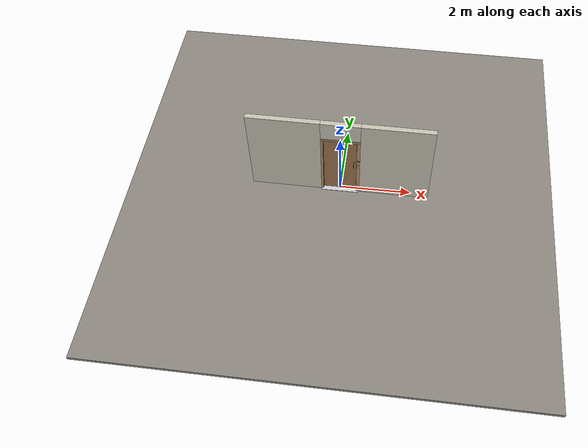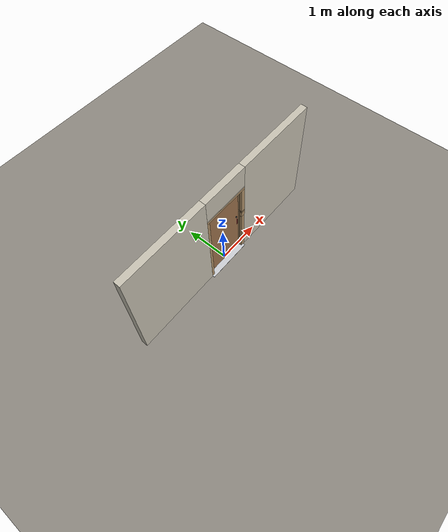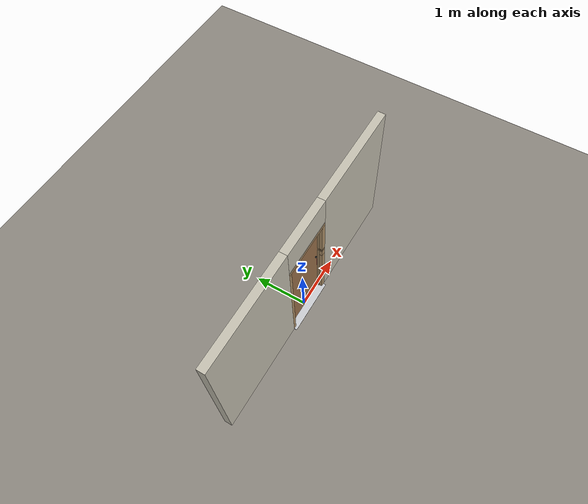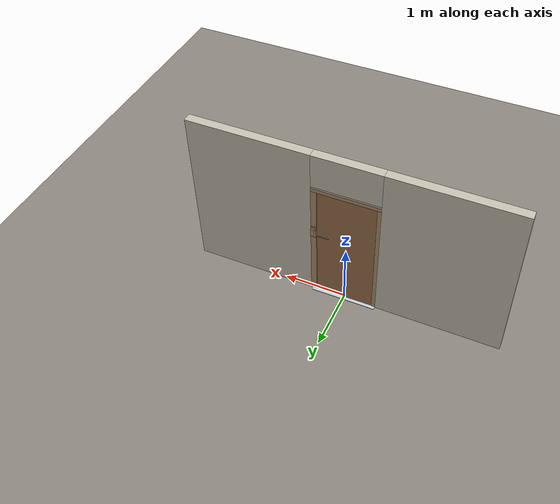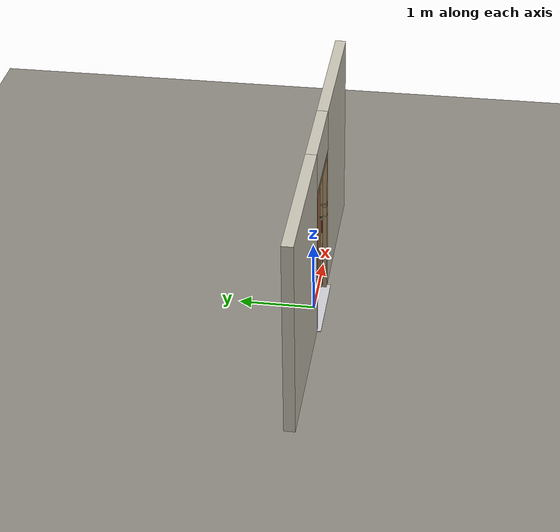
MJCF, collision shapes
<?xml version="1.0" ?>
<mujoco model="db0349_swing_single_minimal">
  <compiler angle="radian" meshdir="../../hardware" texturedir="../../textures" autolimits="true" inertiafromgeom="false"/>
  <option timestep="0.002" integrator="implicitfast" cone="elliptic" impratio="10" noslip_iterations="3">
    <flag multiccd="enable"/>
  </option>
  <size memory="16M"/>
  <default>
    <geom condim="4" solref="0.005 1" solimp="0.95 0.99 0.001"/>
    <joint solreflimit="0.005 1" solimplimit="0.95 0.99 0.001"/>
    <tendon solreflimit="0.005 1"/>
    <equality solref="0.002 1"/>
  </default>
  <visual>
    <headlight ambient="0.4 0.4 0.4" diffuse="0.7 0.7 0.7" specular="0.2 0.2 0.2"/>
    <quality shadowsize="4096"/>
    <map znear="0.01" zfar="60"/>
  </visual>
  <asset>
    <mesh name="thumb_latch_0073ea78ed" file="thumb_latch_0073ea78ed.obj"/>
    <material name="mat_floor" rgba="0.55 0.53 0.5 1" specular="0.2" shininess="0.15" reflectance="0"/>
    <material name="mat_wall" rgba="0.78 0.76 0.7 1" specular="0.2" shininess="0.1" reflectance="0"/>
    <material name="mat_leaf" rgba="0.62 0.45 0.3 1" specular="0.2" shininess="0.5" reflectance="0"/>
    <material name="mat_leaf_brace" rgba="0.558 0.405 0.27 1" specular="0.2" shininess="0.2" reflectance="0"/>
    <material name="mat_hinge" rgba="0.45 0.3 0.22 1" specular="0.5" shininess="0.1" reflectance="0.2"/>
    <material name="mat_op_wrought_iron" rgba="0.08 0.08 0.09 1" specular="0.56" shininess="0.25" reflectance="0.24"/>
    <material name="mat_op_brass" rgba="0.85 0.66 0.3 1" specular="0.8" shininess="0.75" reflectance="0.4"/>
    <material name="mat_frame" rgba="0.7 0.58 0.42 1" specular="0.2" shininess="0.5" reflectance="0"/>
    <material name="mat_threshold" rgba="0.8 0.81 0.83 1" specular="0.8" shininess="0.6" reflectance="0.4"/>
    <material name="mat_bumper_stop" rgba="0.08 0.08 0.08 1" specular="0.2" shininess="0.1" reflectance="0"/>
    <material name="mat_stop_base" rgba="0.9 0.9 0.92 1" specular="0.8" shininess="0.9" reflectance="0.4"/>
    <texture name="skybox" type="skybox" builtin="gradient" rgb1="0.6 0.7 0.85" rgb2="0.9 0.92 0.95" width="256" height="256"/>
  </asset>
  <worldbody>
    <light name="sun" pos="1.5 -2.5 4" dir="-0.3 0.5 -0.8" directional="true" diffuse="0.8 0.8 0.8" specular="0.3 0.3 0.3" castshadow="true"/>
    <light name="fill" pos="-1.5 2.5 3" dir="0.3 -0.5 -0.7" directional="true" diffuse="0.35 0.35 0.4" castshadow="false"/>
    <camera name="robot_view" pos="0 -2.582688 1.734312" xyaxes="1 0 0 0 0.26963 0.962964" fovy="52"/>
    <camera name="far_view" pos="0 2.501687 1.734312" xyaxes="-1 0 0 0 -0.26963 0.962964" fovy="52"/>
    <camera name="iso" pos="1.932062 -2.175938 2.141063" xyaxes="0.741536 0.670913 0 -0.242917 0.268487 0.932151" fovy="46"/>
    <camera name="detail_handle" pos="0.556 -0.86 1.33" xyaxes="0.97561 0.219512 0 -0.070934 0.315262 0.94635" fovy="38"/>
    <geom name="floor" type="box" size="6 6 0.05" pos="0 0 -0.05" material="mat_floor" group="0" contype="1" conaffinity="1" friction="0.8 0.005 0.0001" density="2400"/>
    <geom name="wall_left" type="box" size="0.9895 0.0725 1.35" pos="-1.5105 -0.0405 1.35" material="mat_wall" group="0" contype="1" conaffinity="1" friction="0.6 0.005 0.0001" density="800"/>
    <geom name="wall_right" type="box" size="0.9745 0.0725 1.35" pos="1.5255 -0.0405 1.35" material="mat_wall" group="0" contype="1" conaffinity="1" friction="0.6 0.005 0.0001" density="800"/>
    <geom name="wall_header" type="box" size="0.536 0.0725 0.2825" pos="0.015 -0.0405 2.4175" material="mat_wall" group="0" contype="1" conaffinity="1" friction="0.6 0.005 0.0001" density="800"/>
    <geom name="jamb_hinge" type="box" size="0.03 0.0725 1.0225" pos="-0.491 -0.0405 1.0225" material="mat_frame" group="0" contype="1" conaffinity="1" friction="0.6 0.005 0.0001" density="750"/>
    <geom name="strike_1235_wall_n" type="box" size="0.045 0.07 0.07" pos="0.506 -0.043 1.235" material="mat_frame" group="0" contype="1" conaffinity="1" friction="0.6 0.005 0.0001" density="750"/>
    <geom name="strike_1235_wall_p" type="box" size="0.015 0.003 0.07" pos="0.476 0.05 1.235" material="mat_frame" group="0" contype="1" conaffinity="1" friction="0.6 0.005 0.0001" density="750"/>
    <geom name="strike_1235_back" type="box" size="0.035 0.01 0.07" pos="0.516 0.037 1.235" material="mat_frame" group="0" contype="1" conaffinity="1" friction="0.6 0.005 0.0001" density="750"/>
    <geom name="strike_1350_wall_n" type="box" size="0.045 0.034 0.01" pos="0.506 -0.079 1.35" material="mat_frame" group="0" contype="1" conaffinity="1" friction="0.6 0.005 0.0001" density="750"/>
    <geom name="strike_1350_wall_p" type="box" size="0.045 0.0305 0.01" pos="0.506 0.0015 1.35" material="mat_frame" group="0" contype="1" conaffinity="1" friction="0.6 0.005 0.0001" density="750"/>
    <geom name="strike_1350_back" type="box" size="0.024 0.008 0.01" pos="0.527 -0.037 1.35" material="mat_frame" group="0" contype="1" conaffinity="1" friction="0.6 0.005 0.0001" density="750"/>
    <geom name="jamb_strike_0" type="box" size="0.045 0.0725 0.5825" pos="0.506 -0.0405 0.5825" material="mat_frame" group="0" contype="1" conaffinity="1" friction="0.6 0.005 0.0001" density="750"/>
    <geom name="jamb_strike_1" type="box" size="0.045 0.0725 0.0175" pos="0.506 -0.0405 1.3225" material="mat_frame" group="0" contype="1" conaffinity="1" friction="0.6 0.005 0.0001" density="750"/>
    <geom name="jamb_strike_2" type="box" size="0.045 0.0725 0.3425" pos="0.506 -0.0405 1.7025" material="mat_frame" group="0" contype="1" conaffinity="1" friction="0.6 0.005 0.0001" density="750"/>
    <geom name="jamb_head" type="box" size="0.536 0.0725 0.03" pos="0.015 -0.0405 2.075" material="mat_frame" group="0" contype="1" conaffinity="1" friction="0.6 0.005 0.0001" density="750"/>
    <geom name="head_stud" type="box" size="0.536 0.0725 0.015" pos="0.015 -0.0405 2.12" material="mat_wall" group="0" contype="1" conaffinity="1" friction="0.6 0.005 0.0001" density="500"/>
    <geom name="stop_hinge" type="box" size="0.0055 0.016 1.0225" pos="-0.4555 -0.0415 1.0225" material="mat_frame" group="0" contype="1" conaffinity="1" friction="0.6 0.005 0.0001" density="750"/>
    <geom name="stop_strike" type="box" size="0.0055 0.016 0.664" pos="0.4555 -0.0415 0.664" material="mat_frame" group="0" contype="1" conaffinity="1" friction="0.6 0.005 0.0001" density="750"/>
    <geom name="stop_strike_1" type="box" size="0.0055 0.016 0.3365" pos="0.4555 -0.0415 1.7085" material="mat_frame" group="0" contype="1" conaffinity="1" friction="0.6 0.005 0.0001" density="750"/>
    <geom name="stop_head" type="box" size="0.461 0.016 0.0055" pos="0 -0.0415 2.0395" material="mat_frame" group="0" contype="1" conaffinity="1" friction="0.6 0.005 0.0001" density="750"/>
    <geom name="threshold" type="box" size="0.521 0.1225 0.004" pos="0 -0.0405 0.004" material="mat_threshold" group="0" contype="1" conaffinity="1" friction="0.6 0.005 0.0001" density="2700"/>
    <site name="approach_point" pos="0 -1.5 0" quat="1 0 0 0" size="0.05" rgba="0.2 0.9 0.2 0.5" group="4"/>
    <site name="goal_point" pos="0 1.5 0" quat="1 0 0 0" size="0.05" rgba="0.2 0.9 0.2 0.5" group="4"/>
    <site name="door_plane_center" pos="0 0 1.0225" quat="1 0 0 0" size="0.02" rgba="0.2 0.9 0.2 0.5" group="4"/>
    <body name="leaf" pos="-0.461 0 0">
      <inertial pos="0.464577 -0.000545 1.025304" mass="66.040744" quat="0.500816 0.499392 -0.500626 0.499163" diaginertia="4.66969546 22.467431057 27.106459245"/>
      <joint name="leaf_hinge" type="hinge" axis="0 0 1" pos="0.003 0.032 0" limited="true" range="0 1.570796" damping="0.30611" frictionloss="12.216597" armature="0.02"/>
      <geom name="leaf_slab" type="box" size="0.457 0.025 1.016" pos="0.46 0 1.025" material="mat_leaf" group="0" contype="1" conaffinity="1" friction="0.4 0.005 0.0001" density="1"/>
      <geom name="leaf_suffolk_grip" type="mesh" mesh="thumb_latch_0073ea78ed" pos="0.837 -0.025 1.05" quat="0.707107 0.707107 0 0" material="mat_op_wrought_iron" group="1" contype="0" conaffinity="0" density="7000"/>
      <geom name="leaf_suffolk_grip_col" type="capsule" size="0.008 0.09" pos="0.837 -0.06 1.05" material="mat_op_wrought_iron" group="3" contype="1" conaffinity="1" rgba="0.8 0.3 0.3 0.25" friction="0.7 0.01 0.0001" density="7000"/>
      <site name="leaf_grip_n" pos="0.837 -0.06 1.05" quat="1 0 0 0" size="0.012" rgba="0.2 0.9 0.2 0.5" group="4"/>
      <site name="leaf_edge_mid" pos="0.917 0 1.016" quat="1 0 0 0" size="0.02" rgba="0.2 0.9 0.2 0.5" group="4"/>
      <body name="leaf_thumb" pos="0.837 -0.025 1.195">
        <inertial pos="0 -0.02 0" mass="0.03528" quat="1 0 0 0" diaginertia="0.000002411 0.000002752 0.000004951"/>
        <joint name="leaf_thumb_hinge" type="hinge" axis="1 0 0" limited="true" range="0 0.3" damping="0.15542" frictionloss="0.032" stiffness="0.6" springref="-0.5" armature="0.01"/>
        <geom name="leaf_thumb_geom" type="box" size="0.015 0.014 0.003" pos="0 -0.02 0" material="mat_op_wrought_iron" group="0" contype="1" conaffinity="1" friction="0.6 0.005 0.0001" density="7000"/>
        <site name="leaf_thumb_push" pos="0 -0.024 0.005" quat="1 0 0 0" size="0.01" rgba="0.2 0.9 0.2 0.5" group="4"/>
      </body>
      <body name="leaf_latch_bar" pos="0.717 0.037 1.19">
        <inertial pos="0.106 0 0" mass="0.25" quat="0 0 0.707107 0.707107" diaginertia="0.000004465 0.000904065 0.000904065"/>
        <joint name="leaf_latch_bar_hinge" type="hinge" axis="0 -1 0" limited="true" range="0 0.6" damping="0.01" frictionloss="0.01" armature="0.005"/>
        <geom name="leaf_latch_bar_geom" type="capsule" size="0.006 0.1" pos="0.106 0 0" quat="0.707107 0 0.707107 0" material="mat_op_wrought_iron" group="0" contype="1" conaffinity="1" friction="0.6 0.005 0.0001" density="7850"/>
      </body>
    </body>
  </worldbody>
  <equality>
    <joint name="leaf_thumb_couple" joint1="leaf_latch_bar_hinge" joint2="leaf_thumb_hinge" polycoef="0 2 0 0 0" active="true"/>
  </equality>
  <sensor>
    <jointpos name="leaf_hinge_pos" joint="leaf_hinge"/>
    <jointvel name="leaf_hinge_vel" joint="leaf_hinge"/>
    <jointpos name="leaf_thumb_hinge_pos" joint="leaf_thumb_hinge"/>
    <jointvel name="leaf_thumb_hinge_vel" joint="leaf_thumb_hinge"/>
    <jointpos name="leaf_latch_bar_hinge_pos" joint="leaf_latch_bar_hinge"/>
    <jointvel name="leaf_latch_bar_hinge_vel" joint="leaf_latch_bar_hinge"/>
  </sensor>
</mujoco>
